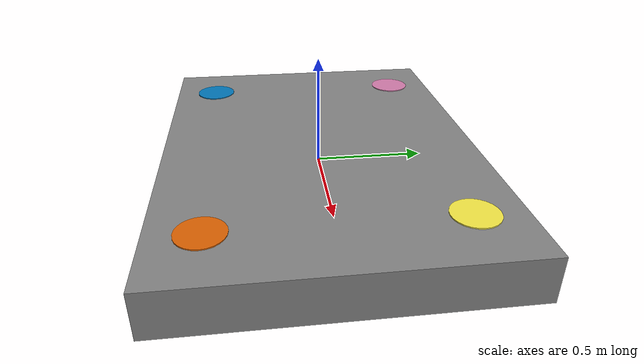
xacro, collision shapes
<?xml version="1.0"?>
<robot name="vtol" xmlns:xacro="http://www.ros.org/wiki/xacro">

  <xacro:property name="PROP_LOCATION_X"    value="0.98" />
  <xacro:property name="PROP_LOCATION_Y"    value="0.72" />  <!-- but widthshould be 1308... -->
  <xacro:property name="PROP_LOCATION_Z"    value="0.1" />

  <xacro:property name="ICE_LOCATION_X"     value="-0.445" />
  <xacro:property name="ICE_LOCATION_Z"     value="0.05" />
  <xacro:property name="ICE_RADIUS"         value="0.1" />
  <xacro:property name="ICE_WIDTH"          value="0.05" />

  <xacro:property name="MOTOR_RADIUS"       value="0.1" />
  <xacro:property name="MOTOR_WIDTH"        value="0.01" />

  <material name="grey">
    <color rgba="0.5 0.5 0.5 1.0"/>
  </material>
  <material name="light_black">
    <color rgba="0.4 0.4 0.4 1.0"/>
  </material>

  <link name="base_footprint"/>

  <link name="base_link">
    <visual>
      <origin xyz="-1.315 -1.55 -0.3" rpy="1.57 0 1.57"/>
      <geometry>
        <mesh filename="package://std_msgs/meshes/vehicle.stl" scale="0.001 0.001 0.001"/>
      </geometry>
      <material name="grey"/>
    </visual>
    <collision>
      <origin xyz="0 0 0" rpy="0 0 0"/>
      <geometry>
        <box size="${PROP_LOCATION_X * 2} ${PROP_LOCATION_Y * 2} ${PROP_LOCATION_Z * 2}"/>
      </geometry>
    </collision>
  </link>
  <joint name="base_joint" type="fixed">
    <parent link="base_footprint"/>
    <child link="base_link"/>
    <origin xyz="0 0 0" rpy="0 0 0"/>
  </joint>

  <link name="ICE">
    <collision>
      <origin xyz="0 0 0"/>
      <geometry>
        <cylinder radius="${ICE_RADIUS}" length="${ICE_WIDTH}" />
      </geometry>
    </collision>
  </link>
  <joint name="ice_connect" type="fixed">
    <parent link="base_link"/>
    <child link="ICE"/>
    <origin xyz="${ICE_LOCATION_X} 0.0 ${ICE_LOCATION_Z}" rpy="0 0 0"/>
    <axis xyz="0 0 1"/>
  </joint>

  <link name="motor0">
    <collision>
      <origin xyz="0 0 0"/>
      <geometry>
        <cylinder radius="${MOTOR_RADIUS}" length="${MOTOR_WIDTH}" />
      </geometry>
    </collision>
  </link>
  <joint name="motor0_connect" type="fixed">
    <parent link="base_link"/>
    <child link="motor0"/>
    <origin xyz="${PROP_LOCATION_X * 0.707} ${PROP_LOCATION_Y * 0.707} ${PROP_LOCATION_Z}" rpy="0 0 0"/>
    <axis xyz="0 0 1"/>
  </joint>

  <link name="motor1">
    <collision>
      <origin xyz="0 0 0"/>
      <geometry>
        <cylinder radius="${MOTOR_RADIUS}" length="${MOTOR_WIDTH}" />
      </geometry>
    </collision>
  </link>
  <joint name="motor1_connect" type="fixed">
    <parent link="base_link"/>
    <child link="motor1"/>
    <origin xyz="${-PROP_LOCATION_X * 0.707} ${-PROP_LOCATION_Y * 0.707} ${PROP_LOCATION_Z}" rpy="0 0 0"/>
    <axis xyz="0 0 1"/>
  </joint>

  <link name="motor2">
    <collision>
      <origin xyz="0 0 0"/>
      <geometry>
        <cylinder radius="${MOTOR_RADIUS}" length="${MOTOR_WIDTH}" />
      </geometry>
    </collision>
  </link>
  <joint name="motor2_connect" type="fixed">
    <parent link="base_link"/>
    <child link="motor2"/>
    <origin xyz="${PROP_LOCATION_X * 0.707} ${-PROP_LOCATION_Y * 0.707} ${PROP_LOCATION_Z}" rpy="0 0 0"/>
    <axis xyz="0 0 1"/>
  </joint>

  <link name="motor3">
    <collision>
      <origin xyz="0 0 0"/>
      <geometry>
        <cylinder radius="${MOTOR_RADIUS}" length="${MOTOR_WIDTH}" />
      </geometry>
    </collision>
  </link>
  <joint name="motor3_connect" type="fixed">
    <parent link="base_link"/>
    <child link="motor3"/>
    <origin xyz="${-PROP_LOCATION_X * 0.707} ${PROP_LOCATION_Y * 0.707} ${PROP_LOCATION_Z}" rpy="0 0 0"/>
    <axis xyz="0 0 1"/>
  </joint>

</robot>
